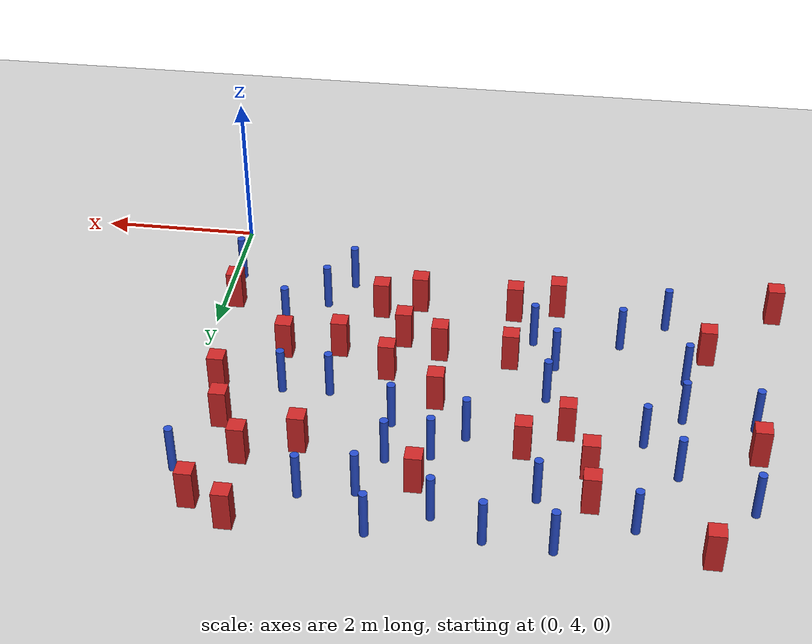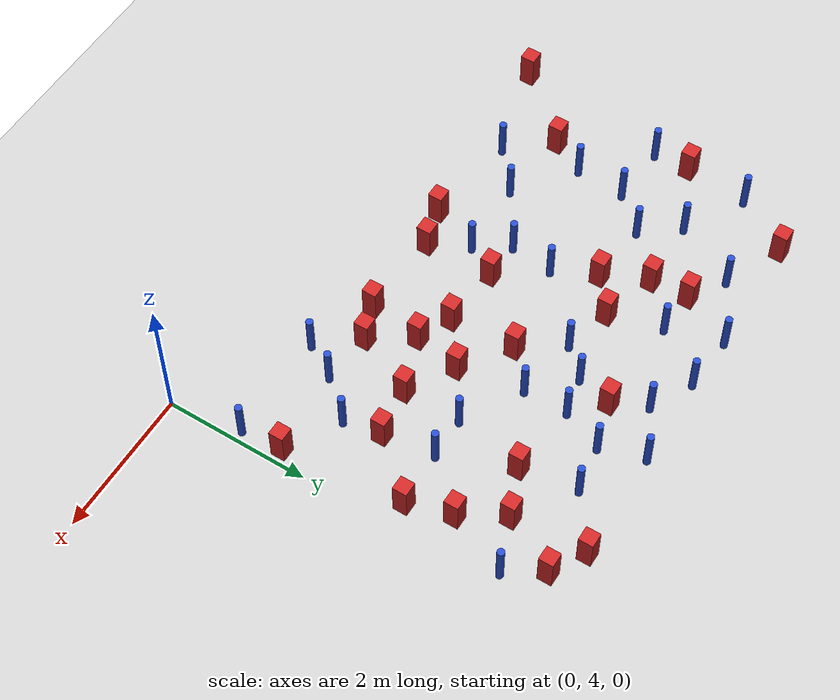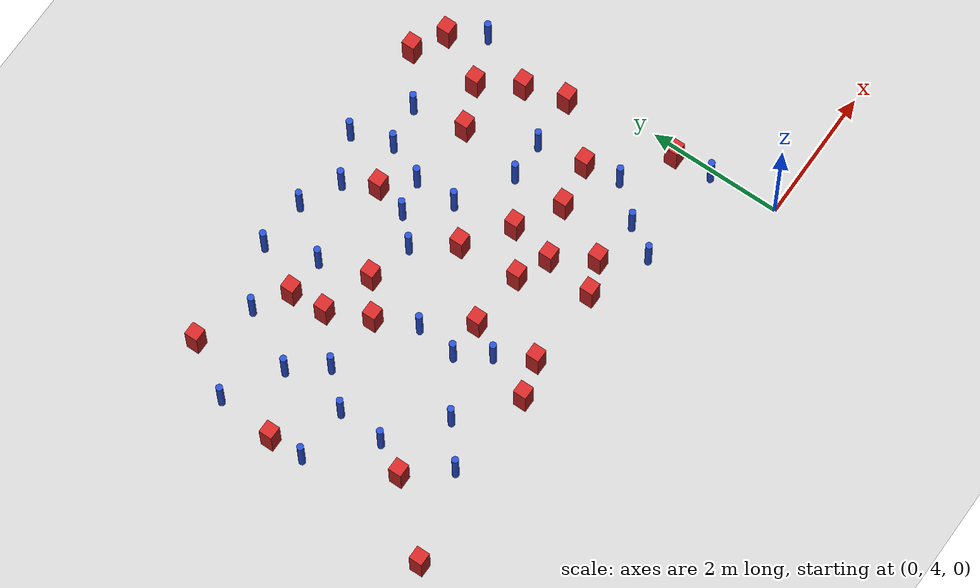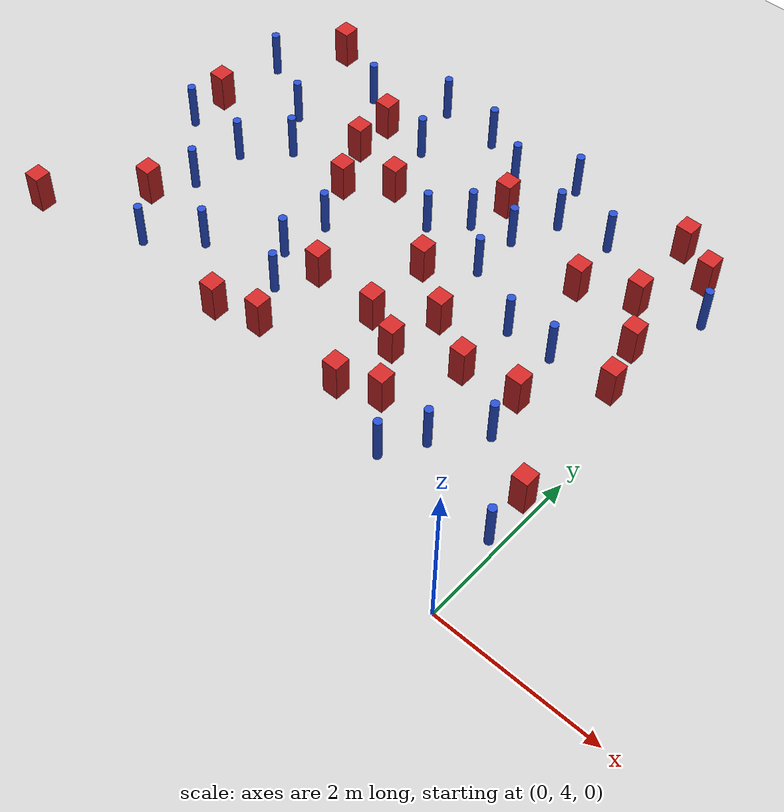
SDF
<sdf version="1.6">
 <world name="default">
  <model name="ground_plane">
   <static>1</static>
   <link name="link">
    <collision name="collision">
     <geometry><plane><normal>0 0 1</normal><size>100 100</size></plane></geometry>
     <surface><friction><ode><mu>100</mu><mu2>50</mu2></ode></friction></surface>
    </collision>
    <visual name="visual">
     <cast_shadows>0</cast_shadows>
     <geometry><plane><normal>0 0 1</normal><size>100 100</size></plane></geometry>
     <material>
      <ambient>1.0 1.0 1.0 1.0</ambient>
      <diffuse>0.8 0.8 0.8 1.0</diffuse>
      <specular>0.01 0.01 0.01 1.000000</specular>
     </material>
    </visual>
   </link>
  </model>
  <model name="pole_obstacle2">
   <static>true</static>
   <pose>-2.99270602096 8.16351334637 -9.4761961606e-06 5.49618799729e-07 2.36310414e-07 -1.55090534824e-07</pose>
   <link name="link">
    <pose>0 0 0.3 0 -0 0</pose>
    <inertial>
     <mass>1</mass>
     <inertia><ixx>0.145833</ixx><ixy>0</ixy><ixz>0</ixz><iyy>0.145833</iyy><iyz>0</iyz><izz>0.125</izz></inertia>
    </inertial>
    <collision name="collision">
     <geometry><cylinder><radius>0.05</radius><length>.6</length></cylinder></geometry>
    </collision>
    <visual name="visual">
     <geometry><cylinder><radius>0.05</radius><length>.6</length></cylinder></geometry>
     <material>
      <script><name>Gazebo/Blue</name><uri>file://media/materials/scripts/gazebo.material</uri></script>
     </material>
    </visual>
   </link>
  </model>
  <model name="square_post_obstacle11">
   <static>true</static>
   <pose>-0.168342185262 5.56822024255 -6.11067671241e-07 -5.50515727128e-06 -8.79689657224e-07 2.37013304536e-05</pose>
   <link name="link">
    <pose>0 0 0.25 0 -0 0</pose>
    <inertial>
     <mass>100</mass>
     <inertia>
      <ixx>0.166667</ixx>
      <ixy>0</ixy>
      <ixz>0</ixz>
      <iyy>0.166667</iyy>
      <iyz>0</iyz>
      <izz>0.166667</izz>
     </inertia>
    </inertial>
    <collision name="collision"><geometry><box><size>.2 .2 .5</size></box></geometry></collision>
    <visual name="visual">
     <geometry><box><size>.2 .2 .5</size></box></geometry>
     <material>
      <script><name>Gazebo/Red</name><uri>file://media/materials/scripts/gazebo.material</uri></script>
     </material>
    </visual>
   </link>
  </model>
  <model name="square_post_obstacle19">
   <static>true</static>
   <pose>-4.81161712822 8.73059657655 -6.11067671241e-07 -5.50515727128e-06 -8.79689657224e-07 2.37013304536e-05</pose>
   <link name="link">
    <pose>0 0 0.25 0 -0 0</pose>
    <inertial>
     <mass>100</mass>
     <inertia>
      <ixx>0.166667</ixx>
      <ixy>0</ixy>
      <ixz>0</ixz>
      <iyy>0.166667</iyy>
      <iyz>0</iyz>
      <izz>0.166667</izz>
     </inertia>
    </inertial>
    <collision name="collision"><geometry><box><size>.2 .2 .5</size></box></geometry></collision>
    <visual name="visual">
     <geometry><box><size>.2 .2 .5</size></box></geometry>
     <material>
      <script><name>Gazebo/Red</name><uri>file://media/materials/scripts/gazebo.material</uri></script>
     </material>
    </visual>
   </link>
  </model>
  <model name="square_post_obstacle21">
   <static>true</static>
   <pose>-4.49922647604 7.5933039331 -6.11067671241e-07 -5.50515727128e-06 -8.79689657224e-07 2.37013304536e-05</pose>
   <link name="link">
    <pose>0 0 0.25 0 -0 0</pose>
    <inertial>
     <mass>100</mass>
     <inertia>
      <ixx>0.166667</ixx>
      <ixy>0</ixy>
      <ixz>0</ixz>
      <iyy>0.166667</iyy>
      <iyz>0</iyz>
      <izz>0.166667</izz>
     </inertia>
    </inertial>
    <collision name="collision"><geometry><box><size>.2 .2 .5</size></box></geometry></collision>
    <visual name="visual">
     <geometry><box><size>.2 .2 .5</size></box></geometry>
     <material>
      <script><name>Gazebo/Red</name><uri>file://media/materials/scripts/gazebo.material</uri></script>
     </material>
    </visual>
   </link>
  </model>
  <model name="pole_obstacle18">
   <static>true</static>
   <pose>-2.48258137651 8.27382204873 -9.4761961606e-06 5.49618799729e-07 2.36310414e-07 -1.55090534824e-07</pose>
   <link name="link">
    <pose>0 0 0.3 0 -0 0</pose>
    <inertial>
     <mass>1</mass>
     <inertia><ixx>0.145833</ixx><ixy>0</ixy><ixz>0</ixz><iyy>0.145833</iyy><iyz>0</iyz><izz>0.125</izz></inertia>
    </inertial>
    <collision name="collision">
     <geometry><cylinder><radius>0.05</radius><length>.6</length></cylinder></geometry>
    </collision>
    <visual name="visual">
     <geometry><cylinder><radius>0.05</radius><length>.6</length></cylinder></geometry>
     <material>
      <script><name>Gazebo/Blue</name><uri>file://media/materials/scripts/gazebo.material</uri></script>
     </material>
    </visual>
   </link>
  </model>
  <model name="pole_obstacle25">
   <static>true</static>
   <pose>-6.59829979529 8.62045647954 -9.47619616065e-06 5.49618799737e-07 2.36310414065e-07 -1.55090534796e-07</pose>
   <link name="link">
    <pose>0 0 0.3 0 -0 0</pose>
    <inertial>
     <mass>1</mass>
     <inertia><ixx>0.145833</ixx><ixy>0</ixy><ixz>0</ixz><iyy>0.145833</iyy><iyz>0</iyz><izz>0.125</izz></inertia>
    </inertial>
    <collision name="collision">
     <geometry><cylinder><radius>0.05</radius><length>.6</length></cylinder></geometry>
    </collision>
    <visual name="visual">
     <geometry><cylinder><radius>0.05</radius><length>.6</length></cylinder></geometry>
     <material>
      <script><name>Gazebo/Blue</name><uri>file://media/materials/scripts/gazebo.material</uri></script>
     </material>
    </visual>
   </link>
  </model>
  <model name="pole_obstacle36">
   <static>true</static>
   <pose>-1.66669396515 7.19871883525 -9.47619616065e-06 5.49618799737e-07 2.36310414061e-07 -1.550905348e-07</pose>
   <link name="link">
    <pose>0 0 0.3 0 -0 0</pose>
    <inertial>
     <mass>1</mass>
     <inertia><ixx>0.145833</ixx><ixy>0</ixy><ixz>0</ixz><iyy>0.145833</iyy><iyz>0</iyz><izz>0.125</izz></inertia>
    </inertial>
    <collision name="collision">
     <geometry><cylinder><radius>0.05</radius><length>.6</length></cylinder></geometry>
    </collision>
    <visual name="visual">
     <geometry><cylinder><radius>0.05</radius><length>.6</length></cylinder></geometry>
     <material>
      <script><name>Gazebo/Blue</name><uri>file://media/materials/scripts/gazebo.material</uri></script>
     </material>
    </visual>
   </link>
  </model>
  <model name="pole_obstacle39">
   <static>true</static>
   <pose>-0.14497143323 8.70722248941 -9.47619616065e-06 5.49618799737e-07 2.36310414038e-07 -1.55090534815e-07</pose>
   <link name="link">
    <pose>0 0 0.3 0 -0 0</pose>
    <inertial>
     <mass>1</mass>
     <inertia><ixx>0.145833</ixx><ixy>0</ixy><ixz>0</ixz><iyy>0.145833</iyy><iyz>0</iyz><izz>0.125</izz></inertia>
    </inertial>
    <collision name="collision">
     <geometry><cylinder><radius>0.05</radius><length>.6</length></cylinder></geometry>
    </collision>
    <visual name="visual">
     <geometry><cylinder><radius>0.05</radius><length>.6</length></cylinder></geometry>
     <material>
      <script><name>Gazebo/Blue</name><uri>file://media/materials/scripts/gazebo.material</uri></script>
     </material>
    </visual>
   </link>
  </model>
  <model name="pole_obstacle41">
   <static>true</static>
   <pose>-2.24146399162 8.83970610219 -9.4761961606e-06 5.49618799729e-07 2.36310414e-07 -1.55090534824e-07</pose>
   <link name="link">
    <pose>0 0 0.3 0 -0 0</pose>
    <inertial>
     <mass>1</mass>
     <inertia><ixx>0.145833</ixx><ixy>0</ixy><ixz>0</ixz><iyy>0.145833</iyy><iyz>0</iyz><izz>0.125</izz></inertia>
    </inertial>
    <collision name="collision">
     <geometry><cylinder><radius>0.05</radius><length>.6</length></cylinder></geometry>
    </collision>
    <visual name="visual">
     <geometry><cylinder><radius>0.05</radius><length>.6</length></cylinder></geometry>
     <material>
      <script><name>Gazebo/Blue</name><uri>file://media/materials/scripts/gazebo.material</uri></script>
     </material>
    </visual>
   </link>
  </model>
  <model name="pole_obstacle45">
   <static>true</static>
   <pose>-1.09263364704 7.21070895545 -9.47619616065e-06 5.49618799737e-07 2.36310414061e-07 -1.550905348e-07</pose>
   <link name="link">
    <pose>0 0 0.3 0 -0 0</pose>
    <inertial>
     <mass>1</mass>
     <inertia><ixx>0.145833</ixx><ixy>0</ixy><ixz>0</ixz><iyy>0.145833</iyy><iyz>0</iyz><izz>0.125</izz></inertia>
    </inertial>
    <collision name="collision">
     <geometry><cylinder><radius>0.05</radius><length>.6</length></cylinder></geometry>
    </collision>
    <visual name="visual">
     <geometry><cylinder><radius>0.05</radius><length>.6</length></cylinder></geometry>
     <material>
      <script><name>Gazebo/Blue</name><uri>file://media/materials/scripts/gazebo.material</uri></script>
     </material>
    </visual>
   </link>
  </model>
  <model name="square_post_obstacle43">
   <static>true</static>
   <pose>-3.74219190935 5.42197526949 -6.11067671241e-07 -5.50515727128e-06 -8.79689657224e-07 2.37013304536e-05</pose>
   <link name="link">
    <pose>0 0 0.25 0 -0 0</pose>
    <inertial>
     <mass>100</mass>
     <inertia>
      <ixx>0.166667</ixx>
      <ixy>0</ixy>
      <ixz>0</ixz>
      <iyy>0.166667</iyy>
      <iyz>0</iyz>
      <izz>0.166667</izz>
     </inertia>
    </inertial>
    <collision name="collision"><geometry><box><size>.2 .2 .5</size></box></geometry></collision>
    <visual name="visual">
     <geometry><box><size>.2 .2 .5</size></box></geometry>
     <material>
      <script><name>Gazebo/Red</name><uri>file://media/materials/scripts/gazebo.material</uri></script>
     </material>
    </visual>
   </link>
  </model>
  <model name="pole_obstacle46">
   <static>true</static>
   <pose>-4.23464470515 7.00380486924 -9.47619616065e-06 5.49618799737e-07 2.36310414037e-07 -1.55090534814e-07</pose>
   <link name="link">
    <pose>0 0 0.3 0 -0 0</pose>
    <inertial>
     <mass>1</mass>
     <inertia><ixx>0.145833</ixx><ixy>0</ixy><ixz>0</ixz><iyy>0.145833</iyy><iyz>0</iyz><izz>0.125</izz></inertia>
    </inertial>
    <collision name="collision">
     <geometry><cylinder><radius>0.05</radius><length>.6</length></cylinder></geometry>
    </collision>
    <visual name="visual">
     <geometry><cylinder><radius>0.05</radius><length>.6</length></cylinder></geometry>
     <material>
      <script><name>Gazebo/Blue</name><uri>file://media/materials/scripts/gazebo.material</uri></script>
     </material>
    </visual>
   </link>
  </model>
  <model name="square_post_obstacle54">
   <static>true</static>
   <pose>-2.06057613623 5.55207586246 -6.11067671241e-07 -5.50515727128e-06 -8.79689657224e-07 2.37013304536e-05</pose>
   <link name="link">
    <pose>0 0 0.25 0 -0 0</pose>
    <inertial>
     <mass>100</mass>
     <inertia>
      <ixx>0.166667</ixx>
      <ixy>0</ixy>
      <ixz>0</ixz>
      <iyy>0.166667</iyy>
      <iyz>0</iyz>
      <izz>0.166667</izz>
     </inertia>
    </inertial>
    <collision name="collision"><geometry><box><size>.2 .2 .5</size></box></geometry></collision>
    <visual name="visual">
     <geometry><box><size>.2 .2 .5</size></box></geometry>
     <material>
      <script><name>Gazebo/Red</name><uri>file://media/materials/scripts/gazebo.material</uri></script>
     </material>
    </visual>
   </link>
  </model>
  <model name="square_post_obstacle55">
   <static>true</static>
   <pose>-2.53311628217 5.36547473872 -6.11067671241e-07 -5.50515727128e-06 -8.79689657224e-07 2.37013304536e-05</pose>
   <link name="link">
    <pose>0 0 0.25 0 -0 0</pose>
    <inertial>
     <mass>100</mass>
     <inertia>
      <ixx>0.166667</ixx>
      <ixy>0</ixy>
      <ixz>0</ixz>
      <iyy>0.166667</iyy>
      <iyz>0</iyz>
      <izz>0.166667</izz>
     </inertia>
    </inertial>
    <collision name="collision"><geometry><box><size>.2 .2 .5</size></box></geometry></collision>
    <visual name="visual">
     <geometry><box><size>.2 .2 .5</size></box></geometry>
     <material>
      <script><name>Gazebo/Red</name><uri>file://media/materials/scripts/gazebo.material</uri></script>
     </material>
    </visual>
   </link>
  </model>
  <model name="pole_obstacle53">
   <static>true</static>
   <pose>-1.60779803636 8.94808743692 -9.47619616065e-06 5.49618799737e-07 2.36310414046e-07 -1.55090534809e-07</pose>
   <link name="link">
    <pose>0 0 0.3 0 -0 0</pose>
    <inertial>
     <mass>1</mass>
     <inertia><ixx>0.145833</ixx><ixy>0</ixy><ixz>0</ixz><iyy>0.145833</iyy><iyz>0</iyz><izz>0.125</izz></inertia>
    </inertial>
    <collision name="collision">
     <geometry><cylinder><radius>0.05</radius><length>.6</length></cylinder></geometry>
    </collision>
    <visual name="visual">
     <geometry><cylinder><radius>0.05</radius><length>.6</length></cylinder></geometry>
     <material>
      <script><name>Gazebo/Blue</name><uri>file://media/materials/scripts/gazebo.material</uri></script>
     </material>
    </visual>
   </link>
  </model>
  <model name="pole_obstacle61">
   <static>true</static>
   <pose>-6.66820597871 7.23279374435 -9.47619616065e-06 5.49618799737e-07 2.36310414037e-07 -1.55090534814e-07</pose>
   <link name="link">
    <pose>0 0 0.3 0 -0 0</pose>
    <inertial>
     <mass>1</mass>
     <inertia><ixx>0.145833</ixx><ixy>0</ixy><ixz>0</ixz><iyy>0.145833</iyy><iyz>0</iyz><izz>0.125</izz></inertia>
    </inertial>
    <collision name="collision">
     <geometry><cylinder><radius>0.05</radius><length>.6</length></cylinder></geometry>
    </collision>
    <visual name="visual">
     <geometry><cylinder><radius>0.05</radius><length>.6</length></cylinder></geometry>
     <material>
      <script><name>Gazebo/Blue</name><uri>file://media/materials/scripts/gazebo.material</uri></script>
     </material>
    </visual>
   </link>
  </model>
  <model name="square_post_obstacle73">
   <static>true</static>
   <pose>-0.498958763206 7.86330886273 -6.11067671241e-07 -5.50515727128e-06 -8.79689657224e-07 2.37013304536e-05</pose>
   <link name="link">
    <pose>0 0 0.25 0 -0 0</pose>
    <inertial>
     <mass>100</mass>
     <inertia>
      <ixx>0.166667</ixx>
      <ixy>0</ixy>
      <ixz>0</ixz>
      <iyy>0.166667</iyy>
      <iyz>0</iyz>
      <izz>0.166667</izz>
     </inertia>
    </inertial>
    <collision name="collision"><geometry><box><size>.2 .2 .5</size></box></geometry></collision>
    <visual name="visual">
     <geometry><box><size>.2 .2 .5</size></box></geometry>
     <material>
      <script><name>Gazebo/Red</name><uri>file://media/materials/scripts/gazebo.material</uri></script>
     </material>
    </visual>
   </link>
  </model>
  <model name="pole_obstacle77">
   <static>true</static>
   <pose>-2.42915545298 9.43721133259 -9.4761961606e-06 5.49618799729e-07 2.36310414e-07 -1.55090534824e-07</pose>
   <link name="link">
    <pose>0 0 0.3 0 -0 0</pose>
    <inertial>
     <mass>1</mass>
     <inertia><ixx>0.145833</ixx><ixy>0</ixy><ixz>0</ixz><iyy>0.145833</iyy><iyz>0</iyz><izz>0.125</izz></inertia>
    </inertial>
    <collision name="collision">
     <geometry><cylinder><radius>0.05</radius><length>.6</length></cylinder></geometry>
    </collision>
    <visual name="visual">
     <geometry><cylinder><radius>0.05</radius><length>.6</length></cylinder></geometry>
     <material>
      <script><name>Gazebo/Blue</name><uri>file://media/materials/scripts/gazebo.material</uri></script>
     </material>
    </visual>
   </link>
  </model>
  <model name="pole_obstacle78">
   <static>true</static>
   <pose>-4.22532831732 8.69902688148 -9.47619616065e-06 5.49618799737e-07 2.36310414065e-07 -1.55090534796e-07</pose>
   <link name="link">
    <pose>0 0 0.3 0 -0 0</pose>
    <inertial>
     <mass>1</mass>
     <inertia><ixx>0.145833</ixx><ixy>0</ixy><ixz>0</ixz><iyy>0.145833</iyy><iyz>0</iyz><izz>0.125</izz></inertia>
    </inertial>
    <collision name="collision">
     <geometry><cylinder><radius>0.05</radius><length>.6</length></cylinder></geometry>
    </collision>
    <visual name="visual">
     <geometry><cylinder><radius>0.05</radius><length>.6</length></cylinder></geometry>
     <material>
      <script><name>Gazebo/Blue</name><uri>file://media/materials/scripts/gazebo.material</uri></script>
     </material>
    </visual>
   </link>
  </model>
  <model name="square_post_obstacle80">
   <static>true</static>
   <pose>-6.13101167859 6.00858298358 -6.11067671241e-07 -5.50515727128e-06 -8.79689657224e-07 2.37013304536e-05</pose>
   <link name="link">
    <pose>0 0 0.25 0 -0 0</pose>
    <inertial>
     <mass>100</mass>
     <inertia>
      <ixx>0.166667</ixx>
      <ixy>0</ixy>
      <ixz>0</ixz>
      <iyy>0.166667</iyy>
      <iyz>0</iyz>
      <izz>0.166667</izz>
     </inertia>
    </inertial>
    <collision name="collision"><geometry><box><size>.2 .2 .5</size></box></geometry></collision>
    <visual name="visual">
     <geometry><box><size>.2 .2 .5</size></box></geometry>
     <material>
      <script><name>Gazebo/Red</name><uri>file://media/materials/scripts/gazebo.material</uri></script>
     </material>
    </visual>
   </link>
  </model>
  <model name="pole_obstacle87">
   <static>true</static>
   <pose>-5.64543630328 5.42486277891 -9.47619616065e-06 5.49618799737e-07 2.36310414037e-07 -1.55090534814e-07</pose>
   <link name="link">
    <pose>0 0 0.3 0 -0 0</pose>
    <inertial>
     <mass>1</mass>
     <inertia><ixx>0.145833</ixx><ixy>0</ixy><ixz>0</ixz><iyy>0.145833</iyy><iyz>0</iyz><izz>0.125</izz></inertia>
    </inertial>
    <collision name="collision">
     <geometry><cylinder><radius>0.05</radius><length>.6</length></cylinder></geometry>
    </collision>
    <visual name="visual">
     <geometry><cylinder><radius>0.05</radius><length>.6</length></cylinder></geometry>
     <material>
      <script><name>Gazebo/Blue</name><uri>file://media/materials/scripts/gazebo.material</uri></script>
     </material>
    </visual>
   </link>
  </model>
  <model name="pole_obstacle90">
   <static>true</static>
   <pose>-5.77312851516 8.15646606127 -9.47619616065e-06 5.49618799737e-07 2.36310414065e-07 -1.55090534796e-07</pose>
   <link name="link">
    <pose>0 0 0.3 0 -0 0</pose>
    <inertial>
     <mass>1</mass>
     <inertia><ixx>0.145833</ixx><ixy>0</ixy><ixz>0</ixz><iyy>0.145833</iyy><iyz>0</iyz><izz>0.125</izz></inertia>
    </inertial>
    <collision name="collision">
     <geometry><cylinder><radius>0.05</radius><length>.6</length></cylinder></geometry>
    </collision>
    <visual name="visual">
     <geometry><cylinder><radius>0.05</radius><length>.6</length></cylinder></geometry>
     <material>
      <script><name>Gazebo/Blue</name><uri>file://media/materials/scripts/gazebo.material</uri></script>
     </material>
    </visual>
   </link>
  </model>
  <model name="pole_obstacle91">
   <static>true</static>
   <pose>-4.30699243745 6.39858454291 -9.47619616065e-06 5.49618799737e-07 2.36310414037e-07 -1.55090534814e-07</pose>
   <link name="link">
    <pose>0 0 0.3 0 -0 0</pose>
    <inertial>
     <mass>1</mass>
     <inertia><ixx>0.145833</ixx><ixy>0</ixy><ixz>0</ixz><iyy>0.145833</iyy><iyz>0</iyz><izz>0.125</izz></inertia>
    </inertial>
    <collision name="collision">
     <geometry><cylinder><radius>0.05</radius><length>.6</length></cylinder></geometry>
    </collision>
    <visual name="visual">
     <geometry><cylinder><radius>0.05</radius><length>.6</length></cylinder></geometry>
     <material>
      <script><name>Gazebo/Blue</name><uri>file://media/materials/scripts/gazebo.material</uri></script>
     </material>
    </visual>
   </link>
  </model>
  <model name="pole_obstacle92">
   <static>true</static>
   <pose>-5.08440858093 5.88658005969 -9.47619616065e-06 5.49618799737e-07 2.36310414037e-07 -1.55090534814e-07</pose>
   <link name="link">
    <pose>0 0 0.3 0 -0 0</pose>
    <inertial>
     <mass>1</mass>
     <inertia><ixx>0.145833</ixx><ixy>0</ixy><ixz>0</ixz><iyy>0.145833</iyy><iyz>0</iyz><izz>0.125</izz></inertia>
    </inertial>
    <collision name="collision">
     <geometry><cylinder><radius>0.05</radius><length>.6</length></cylinder></geometry>
    </collision>
    <visual name="visual">
     <geometry><cylinder><radius>0.05</radius><length>.6</length></cylinder></geometry>
     <material>
      <script><name>Gazebo/Blue</name><uri>file://media/materials/scripts/gazebo.material</uri></script>
     </material>
    </visual>
   </link>
  </model>
  <model name="square_post_obstacle92">
   <static>true</static>
   <pose>-0.840992350762 8.44017807429 -6.11067671241e-07 -5.50515727128e-06 -8.79689657224e-07 2.37013304536e-05</pose>
   <link name="link">
    <pose>0 0 0.25 0 -0 0</pose>
    <inertial>
     <mass>100</mass>
     <inertia>
      <ixx>0.166667</ixx>
      <ixy>0</ixy>
      <ixz>0</ixz>
      <iyy>0.166667</iyy>
      <iyz>0</iyz>
      <izz>0.166667</izz>
     </inertia>
    </inertial>
    <collision name="collision"><geometry><box><size>.2 .2 .5</size></box></geometry></collision>
    <visual name="visual">
     <geometry><box><size>.2 .2 .5</size></box></geometry>
     <material>
      <script><name>Gazebo/Red</name><uri>file://media/materials/scripts/gazebo.material</uri></script>
     </material>
    </visual>
   </link>
  </model>
  <model name="pole_obstacle105">
   <static>true</static>
   <pose>-0.12525635423 4.99179556506 -9.47619616065e-06 5.49618799737e-07 2.36310414062e-07 -1.550905348e-07</pose>
   <link name="link">
    <pose>0 0 0.3 0 -0 0</pose>
    <inertial>
     <mass>1</mass>
     <inertia><ixx>0.145833</ixx><ixy>0</ixy><ixz>0</ixz><iyy>0.145833</iyy><iyz>0</iyz><izz>0.125</izz></inertia>
    </inertial>
    <collision name="collision">
     <geometry><cylinder><radius>0.05</radius><length>.6</length></cylinder></geometry>
    </collision>
    <visual name="visual">
     <geometry><cylinder><radius>0.05</radius><length>.6</length></cylinder></geometry>
     <material>
      <script><name>Gazebo/Blue</name><uri>file://media/materials/scripts/gazebo.material</uri></script>
     </material>
    </visual>
   </link>
  </model>
  <model name="square_post_obstacle98">
   <static>true</static>
   <pose>-4.27892141968 5.26059124908 -6.11067671241e-07 -5.50515727128e-06 -8.79689657224e-07 2.37013304536e-05</pose>
   <link name="link">
    <pose>0 0 0.25 0 -0 0</pose>
    <inertial>
     <mass>100</mass>
     <inertia>
      <ixx>0.166667</ixx>
      <ixy>0</ixy>
      <ixz>0</ixz>
      <iyy>0.166667</iyy>
      <iyz>0</iyz>
      <izz>0.166667</izz>
     </inertia>
    </inertial>
    <collision name="collision"><geometry><box><size>.2 .2 .5</size></box></geometry></collision>
    <visual name="visual">
     <geometry><box><size>.2 .2 .5</size></box></geometry>
     <material>
      <script><name>Gazebo/Red</name><uri>file://media/materials/scripts/gazebo.material</uri></script>
     </material>
    </visual>
   </link>
  </model>
  <model name="square_post_obstacle102">
   <static>true</static>
   <pose>-6.99234487947 5.06630958952 -6.11067671241e-07 -5.50515727128e-06 -8.79689657224e-07 2.37013304536e-05</pose>
   <link name="link">
    <pose>0 0 0.25 0 -0 0</pose>
    <inertial>
     <mass>100</mass>
     <inertia>
      <ixx>0.166667</ixx>
      <ixy>0</ixy>
      <ixz>0</ixz>
      <iyy>0.166667</iyy>
      <iyz>0</iyz>
      <izz>0.166667</izz>
     </inertia>
    </inertial>
    <collision name="collision"><geometry><box><size>.2 .2 .5</size></box></geometry></collision>
    <visual name="visual">
     <geometry><box><size>.2 .2 .5</size></box></geometry>
     <material>
      <script><name>Gazebo/Red</name><uri>file://media/materials/scripts/gazebo.material</uri></script>
     </material>
    </visual>
   </link>
  </model>
  <model name="square_post_obstacle107">
   <static>true</static>
   <pose>-4.01656646397 7.96715911175 -6.11067671241e-07 -5.50515727128e-06 -8.79689657224e-07 2.37013304536e-05</pose>
   <link name="link">
    <pose>0 0 0.25 0 -0 0</pose>
    <inertial>
     <mass>100</mass>
     <inertia>
      <ixx>0.166667</ixx>
      <ixy>0</ixy>
      <ixz>0</ixz>
      <iyy>0.166667</iyy>
      <iyz>0</iyz>
      <izz>0.166667</izz>
     </inertia>
    </inertial>
    <collision name="collision"><geometry><box><size>.2 .2 .5</size></box></geometry></collision>
    <visual name="visual">
     <geometry><box><size>.2 .2 .5</size></box></geometry>
     <material>
      <script><name>Gazebo/Red</name><uri>file://media/materials/scripts/gazebo.material</uri></script>
     </material>
    </visual>
   </link>
  </model>
  <model name="square_post_obstacle111">
   <static>true</static>
   <pose>-4.78341461138 8.19954308501 -6.11067671241e-07 -5.50515727128e-06 -8.79689657224e-07 2.37013304536e-05</pose>
   <link name="link">
    <pose>0 0 0.25 0 -0 0</pose>
    <inertial>
     <mass>100</mass>
     <inertia>
      <ixx>0.166667</ixx>
      <ixy>0</ixy>
      <ixz>0</ixz>
      <iyy>0.166667</iyy>
      <iyz>0</iyz>
      <izz>0.166667</izz>
     </inertia>
    </inertial>
    <collision name="collision"><geometry><box><size>.2 .2 .5</size></box></geometry></collision>
    <visual name="visual">
     <geometry><box><size>.2 .2 .5</size></box></geometry>
     <material>
      <script><name>Gazebo/Red</name><uri>file://media/materials/scripts/gazebo.material</uri></script>
     </material>
    </visual>
   </link>
  </model>
  <model name="square_post_obstacle113">
   <static>true</static>
   <pose>-6.67709172913 7.74280831941 -6.11067671241e-07 -5.50515727128e-06 -8.79689657224e-07 2.37013304536e-05</pose>
   <link name="link">
    <pose>0 0 0.25 0 -0 0</pose>
    <inertial>
     <mass>100</mass>
     <inertia>
      <ixx>0.166667</ixx>
      <ixy>0</ixy>
      <ixz>0</ixz>
      <iyy>0.166667</iyy>
      <iyz>0</iyz>
      <izz>0.166667</izz>
     </inertia>
    </inertial>
    <collision name="collision"><geometry><box><size>.2 .2 .5</size></box></geometry></collision>
    <visual name="visual">
     <geometry><box><size>.2 .2 .5</size></box></geometry>
     <material>
      <script><name>Gazebo/Red</name><uri>file://media/materials/scripts/gazebo.material</uri></script>
     </material>
    </visual>
   </link>
  </model>
  <model name="square_post_obstacle115">
   <static>true</static>
   <pose>-1.66228161183 6.39782128132 -6.11067671241e-07 -5.50515727128e-06 -8.79689657224e-07 2.37013304536e-05</pose>
   <link name="link">
    <pose>0 0 0.25 0 -0 0</pose>
    <inertial>
     <mass>100</mass>
     <inertia>
      <ixx>0.166667</ixx>
      <ixy>0</ixy>
      <ixz>0</ixz>
      <iyy>0.166667</iyy>
      <iyz>0</iyz>
      <izz>0.166667</izz>
     </inertia>
    </inertial>
    <collision name="collision"><geometry><box><size>.2 .2 .5</size></box></geometry></collision>
    <visual name="visual">
     <geometry><box><size>.2 .2 .5</size></box></geometry>
     <material>
      <script><name>Gazebo/Red</name><uri>file://media/materials/scripts/gazebo.material</uri></script>
     </material>
    </visual>
   </link>
  </model>
  <model name="square_post_obstacle117">
   <static>true</static>
   <pose>-6.10715785202 9.393371187 -6.11067671241e-07 -5.50515727128e-06 -8.79689657224e-07 2.37013304536e-05</pose>
   <link name="link">
    <pose>0 0 0.25 0 -0 0</pose>
    <inertial>
     <mass>100</mass>
     <inertia>
      <ixx>0.166667</ixx>
      <ixy>0</ixy>
      <ixz>0</ixz>
      <iyy>0.166667</iyy>
      <iyz>0</iyz>
      <izz>0.166667</izz>
     </inertia>
    </inertial>
    <collision name="collision"><geometry><box><size>.2 .2 .5</size></box></geometry></collision>
    <visual name="visual">
     <geometry><box><size>.2 .2 .5</size></box></geometry>
     <material>
      <script><name>Gazebo/Red</name><uri>file://media/materials/scripts/gazebo.material</uri></script>
     </material>
    </visual>
   </link>
  </model>
  <model name="square_post_obstacle118">
   <static>true</static>
   <pose>-2.29782736026 6.77293217452 -6.11067671241e-07 -5.50515727128e-06 -8.79689657224e-07 2.37013304536e-05</pose>
   <link name="link">
    <pose>0 0 0.25 0 -0 0</pose>
    <inertial>
     <mass>100</mass>
     <inertia>
      <ixx>0.166667</ixx>
      <ixy>0</ixy>
      <ixz>0</ixz>
      <iyy>0.166667</iyy>
      <iyz>0</iyz>
      <izz>0.166667</izz>
     </inertia>
    </inertial>
    <collision name="collision"><geometry><box><size>.2 .2 .5</size></box></geometry></collision>
    <visual name="visual">
     <geometry><box><size>.2 .2 .5</size></box></geometry>
     <material>
      <script><name>Gazebo/Red</name><uri>file://media/materials/scripts/gazebo.material</uri></script>
     </material>
    </visual>
   </link>
  </model>
  <model name="square_post_obstacle125">
   <static>true</static>
   <pose>-2.89039213765 6.32676688581 -6.11067671241e-07 -5.50515727128e-06 -8.79689657224e-07 2.37013304536e-05</pose>
   <link name="link">
    <pose>0 0 0.25 0 -0 0</pose>
    <inertial>
     <mass>100</mass>
     <inertia>
      <ixx>0.166667</ixx>
      <ixy>0</ixy>
      <ixz>0</ixz>
      <iyy>0.166667</iyy>
      <iyz>0</iyz>
      <izz>0.166667</izz>
     </inertia>
    </inertial>
    <collision name="collision"><geometry><box><size>.2 .2 .5</size></box></geometry></collision>
    <visual name="visual">
     <geometry><box><size>.2 .2 .5</size></box></geometry>
     <material>
      <script><name>Gazebo/Red</name><uri>file://media/materials/scripts/gazebo.material</uri></script>
     </material>
    </visual>
   </link>
  </model>
  <model name="pole_obstacle144">
   <static>true</static>
   <pose>-2.47476789034 7.65853597113 -9.47619616065e-06 5.49618799738e-07 2.3631041406e-07 -1.55090534801e-07</pose>
   <link name="link">
    <pose>0 0 0.3 0 -0 0</pose>
    <inertial>
     <mass>1</mass>
     <inertia><ixx>0.145833</ixx><ixy>0</ixy><ixz>0</ixz><iyy>0.145833</iyy><iyz>0</iyz><izz>0.125</izz></inertia>
    </inertial>
    <collision name="collision">
     <geometry><cylinder><radius>0.05</radius><length>.6</length></cylinder></geometry>
    </collision>
    <visual name="visual">
     <geometry><cylinder><radius>0.05</radius><length>.6</length></cylinder></geometry>
     <material>
      <script><name>Gazebo/Blue</name><uri>file://media/materials/scripts/gazebo.material</uri></script>
     </material>
    </visual>
   </link>
  </model>
  <model name="square_post_obstacle134">
   <static>true</static>
   <pose>-2.42102468572 6.11786242803 -6.11067671241e-07 -5.50515727128e-06 -8.79689657224e-07 2.37013304536e-05</pose>
   <link name="link">
    <pose>0 0 0.25 0 -0 0</pose>
    <inertial>
     <mass>100</mass>
     <inertia>
      <ixx>0.166667</ixx>
      <ixy>0</ixy>
      <ixz>0</ixz>
      <iyy>0.166667</iyy>
      <iyz>0</iyz>
      <izz>0.166667</izz>
     </inertia>
    </inertial>
    <collision name="collision"><geometry><box><size>.2 .2 .5</size></box></geometry></collision>
    <visual name="visual">
     <geometry><box><size>.2 .2 .5</size></box></geometry>
     <material>
      <script><name>Gazebo/Red</name><uri>file://media/materials/scripts/gazebo.material</uri></script>
     </material>
    </visual>
   </link>
  </model>
  <model name="square_post_obstacle136">
   <static>true</static>
   <pose>-0.327692633127 7.2480206291 -6.11067671241e-07 -5.50515727128e-06 -8.79689657224e-07 2.37013304536e-05</pose>
   <link name="link">
    <pose>0 0 0.25 0 -0 0</pose>
    <inertial>
     <mass>100</mass>
     <inertia>
      <ixx>0.166667</ixx>
      <ixy>0</ixy>
      <ixz>0</ixz>
      <iyy>0.166667</iyy>
      <iyz>0</iyz>
      <izz>0.166667</izz>
     </inertia>
    </inertial>
    <collision name="collision"><geometry><box><size>.2 .2 .5</size></box></geometry></collision>
    <visual name="visual">
     <geometry><box><size>.2 .2 .5</size></box></geometry>
     <material>
      <script><name>Gazebo/Red</name><uri>file://media/materials/scripts/gazebo.material</uri></script>
     </material>
    </visual>
   </link>
  </model>
  <model name="pole_obstacle152">
   <static>true</static>
   <pose>-5.3064101616 9.03194871055 -9.47619616065e-06 5.49618799737e-07 2.36310414065e-07 -1.55090534796e-07</pose>
   <link name="link">
    <pose>0 0 0.3 0 -0 0</pose>
    <inertial>
     <mass>1</mass>
     <inertia><ixx>0.145833</ixx><ixy>0</ixy><ixz>0</ixz><iyy>0.145833</iyy><iyz>0</iyz><izz>0.125</izz></inertia>
    </inertial>
    <collision name="collision">
     <geometry><cylinder><radius>0.05</radius><length>.6</length></cylinder></geometry>
    </collision>
    <visual name="visual">
     <geometry><cylinder><radius>0.05</radius><length>.6</length></cylinder></geometry>
     <material>
      <script><name>Gazebo/Blue</name><uri>file://media/materials/scripts/gazebo.material</uri></script>
     </material>
    </visual>
   </link>
  </model>
  <model name="pole_obstacle155">
   <static>true</static>
   <pose>-1.62645446022 5.01463564295 -9.47619616065e-06 5.49618799737e-07 2.36310414061e-07 -1.550905348e-07</pose>
   <link name="link">
    <pose>0 0 0.3 0 -0 0</pose>
    <inertial>
     <mass>1</mass>
     <inertia><ixx>0.145833</ixx><ixy>0</ixy><ixz>0</ixz><iyy>0.145833</iyy><iyz>0</iyz><izz>0.125</izz></inertia>
    </inertial>
    <collision name="collision">
     <geometry><cylinder><radius>0.05</radius><length>.6</length></cylinder></geometry>
    </collision>
    <visual name="visual">
     <geometry><cylinder><radius>0.05</radius><length>.6</length></cylinder></geometry>
     <material>
      <script><name>Gazebo/Blue</name><uri>file://media/materials/scripts/gazebo.material</uri></script>
     </material>
    </visual>
   </link>
  </model>
  <model name="pole_obstacle168">
   <static>true</static>
   <pose>-4.01616049066 5.93927840136 -9.47619616065e-06 5.49618799737e-07 2.36310414031e-07 -1.55090534817e-07</pose>
   <link name="link">
    <pose>0 0 0.3 0 -0 0</pose>
    <inertial>
     <mass>1</mass>
     <inertia><ixx>0.145833</ixx><ixy>0</ixy><ixz>0</ixz><iyy>0.145833</iyy><iyz>0</iyz><izz>0.125</izz></inertia>
    </inertial>
    <collision name="collision">
     <geometry><cylinder><radius>0.05</radius><length>.6</length></cylinder></geometry>
    </collision>
    <visual name="visual">
     <geometry><cylinder><radius>0.05</radius><length>.6</length></cylinder></geometry>
     <material>
      <script><name>Gazebo/Blue</name><uri>file://media/materials/scripts/gazebo.material</uri></script>
     </material>
    </visual>
   </link>
  </model>
  <model name="pole_obstacle170">
   <static>true</static>
   <pose>-3.10289810377 9.10888914308 -9.4761961606e-06 5.49618799729e-07 2.36310414e-07 -1.55090534824e-07</pose>
   <link name="link">
    <pose>0 0 0.3 0 -0 0</pose>
    <inertial>
     <mass>1</mass>
     <inertia><ixx>0.145833</ixx><ixy>0</ixy><ixz>0</ixz><iyy>0.145833</iyy><iyz>0</iyz><izz>0.125</izz></inertia>
    </inertial>
    <collision name="collision">
     <geometry><cylinder><radius>0.05</radius><length>.6</length></cylinder></geometry>
    </collision>
    <visual name="visual">
     <geometry><cylinder><radius>0.05</radius><length>.6</length></cylinder></geometry>
     <material>
      <script><name>Gazebo/Blue</name><uri>file://media/materials/scripts/gazebo.material</uri></script>
     </material>
    </visual>
   </link>
  </model>
  <model name="pole_obstacle174">
   <static>true</static>
   <pose>-3.68844204681 9.39634615477 -9.4761961606e-06 5.49618799729e-07 2.36310414e-07 -1.55090534824e-07</pose>
   <link name="link">
    <pose>0 0 0.3 0 -0 0</pose>
    <inertial>
     <mass>1</mass>
     <inertia><ixx>0.145833</ixx><ixy>0</ixy><ixz>0</ixz><iyy>0.145833</iyy><iyz>0</iyz><izz>0.125</izz></inertia>
    </inertial>
    <collision name="collision">
     <geometry><cylinder><radius>0.05</radius><length>.6</length></cylinder></geometry>
    </collision>
    <visual name="visual">
     <geometry><cylinder><radius>0.05</radius><length>.6</length></cylinder></geometry>
     <material>
      <script><name>Gazebo/Blue</name><uri>file://media/materials/scripts/gazebo.material</uri></script>
     </material>
    </visual>
   </link>
  </model>
  <model name="pole_obstacle177">
   <static>true</static>
   <pose>-3.35755342998 7.79714791008 -9.47619616065e-06 5.49618799738e-07 2.3631041406e-07 -1.55090534801e-07</pose>
   <link name="link">
    <pose>0 0 0.3 0 -0 0</pose>
    <inertial>
     <mass>1</mass>
     <inertia><ixx>0.145833</ixx><ixy>0</ixy><ixz>0</ixz><iyy>0.145833</iyy><iyz>0</iyz><izz>0.125</izz></inertia>
    </inertial>
    <collision name="collision">
     <geometry><cylinder><radius>0.05</radius><length>.6</length></cylinder></geometry>
    </collision>
    <visual name="visual">
     <geometry><cylinder><radius>0.05</radius><length>.6</length></cylinder></geometry>
     <material>
      <script><name>Gazebo/Blue</name><uri>file://media/materials/scripts/gazebo.material</uri></script>
     </material>
    </visual>
   </link>
  </model>
  <model name="square_post_obstacle167">
   <static>true</static>
   <pose>-1.47424149027 8.1732983493 -6.11067671241e-07 -5.50515727128e-06 -8.79689657224e-07 2.37013304536e-05</pose>
   <link name="link">
    <pose>0 0 0.25 0 -0 0</pose>
    <inertial>
     <mass>100</mass>
     <inertia>
      <ixx>0.166667</ixx>
      <ixy>0</ixy>
      <ixz>0</ixz>
      <iyy>0.166667</iyy>
      <iyz>0</iyz>
      <izz>0.166667</izz>
     </inertia>
    </inertial>
    <collision name="collision"><geometry><box><size>.2 .2 .5</size></box></geometry></collision>
    <visual name="visual">
     <geometry><box><size>.2 .2 .5</size></box></geometry>
     <material>
      <script><name>Gazebo/Red</name><uri>file://media/materials/scripts/gazebo.material</uri></script>
     </material>
    </visual>
   </link>
  </model>
  <model name="pole_obstacle184">
   <static>true</static>
   <pose>-4.44924337044 9.4481986757 -9.47619616065e-06 5.49618799737e-07 2.36310414065e-07 -1.55090534796e-07</pose>
   <link name="link">
    <pose>0 0 0.3 0 -0 0</pose>
    <inertial>
     <mass>1</mass>
     <inertia><ixx>0.145833</ixx><ixy>0</ixy><ixz>0</ixz><iyy>0.145833</iyy><iyz>0</iyz><izz>0.125</izz></inertia>
    </inertial>
    <collision name="collision">
     <geometry><cylinder><radius>0.05</radius><length>.6</length></cylinder></geometry>
    </collision>
    <visual name="visual">
     <geometry><cylinder><radius>0.05</radius><length>.6</length></cylinder></geometry>
     <material>
      <script><name>Gazebo/Blue</name><uri>file://media/materials/scripts/gazebo.material</uri></script>
     </material>
    </visual>
   </link>
  </model>
  <model name="square_post_obstacle181">
   <static>true</static>
   <pose>-0.445832402355 9.19623677012 -6.11067671241e-07 -5.50515727128e-06 -8.79689657224e-07 2.37013304536e-05</pose>
   <link name="link">
    <pose>0 0 0.25 0 -0 0</pose>
    <inertial>
     <mass>100</mass>
     <inertia>
      <ixx>0.166667</ixx>
      <ixy>0</ixy>
      <ixz>0</ixz>
      <iyy>0.166667</iyy>
      <iyz>0</iyz>
      <izz>0.166667</izz>
     </inertia>
    </inertial>
    <collision name="collision"><geometry><box><size>.2 .2 .5</size></box></geometry></collision>
    <visual name="visual">
     <geometry><box><size>.2 .2 .5</size></box></geometry>
     <material>
      <script><name>Gazebo/Red</name><uri>file://media/materials/scripts/gazebo.material</uri></script>
     </material>
    </visual>
   </link>
  </model>
  <model name="square_post_obstacle185">
   <static>true</static>
   <pose>-3.75815080191 6.38556254877 -6.11067671241e-07 -5.50515727128e-06 -8.79689657224e-07 2.37013304536e-05</pose>
   <link name="link">
    <pose>0 0 0.25 0 -0 0</pose>
    <inertial>
     <mass>100</mass>
     <inertia>
      <ixx>0.166667</ixx>
      <ixy>0</ixy>
      <ixz>0</ixz>
      <iyy>0.166667</iyy>
      <iyz>0</iyz>
      <izz>0.166667</izz>
     </inertia>
    </inertial>
    <collision name="collision"><geometry><box><size>.2 .2 .5</size></box></geometry></collision>
    <visual name="visual">
     <geometry><box><size>.2 .2 .5</size></box></geometry>
     <material>
      <script><name>Gazebo/Red</name><uri>file://media/materials/scripts/gazebo.material</uri></script>
     </material>
    </visual>
   </link>
  </model>
  <model name="square_post_obstacle191">
   <static>true</static>
   <pose>-0.914267435171 9.4602988941 -6.11067671241e-07 -5.50515727128e-06 -8.79689657224e-07 2.37013304536e-05</pose>
   <link name="link">
    <pose>0 0 0.25 0 -0 0</pose>
    <inertial>
     <mass>100</mass>
     <inertia>
      <ixx>0.166667</ixx>
      <ixy>0</ixy>
      <ixz>0</ixz>
      <iyy>0.166667</iyy>
      <iyz>0</iyz>
      <izz>0.166667</izz>
     </inertia>
    </inertial>
    <collision name="collision"><geometry><box><size>.2 .2 .5</size></box></geometry></collision>
    <visual name="visual">
     <geometry><box><size>.2 .2 .5</size></box></geometry>
     <material>
      <script><name>Gazebo/Red</name><uri>file://media/materials/scripts/gazebo.material</uri></script>
     </material>
    </visual>
   </link>
  </model>
  <model name="pole_obstacle189">
   <static>true</static>
   <pose>-0.898209194048 5.9787597131 -9.47619616065e-06 5.49618799737e-07 2.36310414065e-07 -1.55090534796e-07</pose>
   <link name="link">
    <pose>0 0 0.3 0 -0 0</pose>
    <inertial>
     <mass>1</mass>
     <inertia><ixx>0.145833</ixx><ixy>0</ixy><ixz>0</ixz><iyy>0.145833</iyy><iyz>0</iyz><izz>0.125</izz></inertia>
    </inertial>
    <collision name="collision">
     <geometry><cylinder><radius>0.05</radius><length>.6</length></cylinder></geometry>
    </collision>
    <visual name="visual">
     <geometry><cylinder><radius>0.05</radius><length>.6</length></cylinder></geometry>
     <material>
      <script><name>Gazebo/Blue</name><uri>file://media/materials/scripts/gazebo.material</uri></script>
     </material>
    </visual>
   </link>
  </model>
  <model name="pole_obstacle201">
   <static>true</static>
   <pose>-5.87852297952 6.48881330418 -9.47619616065e-06 5.49618799737e-07 2.36310414037e-07 -1.55090534814e-07</pose>
   <link name="link">
    <pose>0 0 0.3 0 -0 0</pose>
    <inertial>
     <mass>1</mass>
     <inertia><ixx>0.145833</ixx><ixy>0</ixy><ixz>0</ixz><iyy>0.145833</iyy><iyz>0</iyz><izz>0.125</izz></inertia>
    </inertial>
    <collision name="collision">
     <geometry><cylinder><radius>0.05</radius><length>.6</length></cylinder></geometry>
    </collision>
    <visual name="visual">
     <geometry><cylinder><radius>0.05</radius><length>.6</length></cylinder></geometry>
     <material>
      <script><name>Gazebo/Blue</name><uri>file://media/materials/scripts/gazebo.material</uri></script>
     </material>
    </visual>
   </link>
  </model>
  <model name="pole_obstacle213">
   <static>true</static>
   <pose>-1.34654744619 5.47455227748 -9.47619616065e-06 5.49618799737e-07 2.36310414061e-07 -1.550905348e-07</pose>
   <link name="link">
    <pose>0 0 0.3 0 -0 0</pose>
    <inertial>
     <mass>1</mass>
     <inertia><ixx>0.145833</ixx><ixy>0</ixy><ixz>0</ixz><iyy>0.145833</iyy><iyz>0</iyz><izz>0.125</izz></inertia>
    </inertial>
    <collision name="collision">
     <geometry><cylinder><radius>0.05</radius><length>.6</length></cylinder></geometry>
    </collision>
    <visual name="visual">
     <geometry><cylinder><radius>0.05</radius><length>.6</length></cylinder></geometry>
     <material>
      <script><name>Gazebo/Blue</name><uri>file://media/materials/scripts/gazebo.material</uri></script>
     </material>
    </visual>
   </link>
  </model>
  <model name="pole_obstacle217">
   <static>true</static>
   <pose>-5.83248825152 7.18292377682 -9.47619616065e-06 5.49618799737e-07 2.36310414037e-07 -1.55090534814e-07</pose>
   <link name="link">
    <pose>0 0 0.3 0 -0 0</pose>
    <inertial>
     <mass>1</mass>
     <inertia><ixx>0.145833</ixx><ixy>0</ixy><ixz>0</ixz><iyy>0.145833</iyy><iyz>0</iyz><izz>0.125</izz></inertia>
    </inertial>
    <collision name="collision">
     <geometry><cylinder><radius>0.05</radius><length>.6</length></cylinder></geometry>
    </collision>
    <visual name="visual">
     <geometry><cylinder><radius>0.05</radius><length>.6</length></cylinder></geometry>
     <material>
      <script><name>Gazebo/Blue</name><uri>file://media/materials/scripts/gazebo.material</uri></script>
     </material>
    </visual>
   </link>
  </model>
  <model name="pole_obstacle222">
   <static>true</static>
   <pose>-5.38563842707 7.65600951671 -9.47619616065e-06 5.49618799737e-07 2.36310414037e-07 -1.55090534814e-07</pose>
   <link name="link">
    <pose>0 0 0.3 0 -0 0</pose>
    <inertial>
     <mass>1</mass>
     <inertia><ixx>0.145833</ixx><ixy>0</ixy><ixz>0</ixz><iyy>0.145833</iyy><iyz>0</iyz><izz>0.125</izz></inertia>
    </inertial>
    <collision name="collision">
     <geometry><cylinder><radius>0.05</radius><length>.6</length></cylinder></geometry>
    </collision>
    <visual name="visual">
     <geometry><cylinder><radius>0.05</radius><length>.6</length></cylinder></geometry>
     <material>
      <script><name>Gazebo/Blue</name><uri>file://media/materials/scripts/gazebo.material</uri></script>
     </material>
    </visual>
   </link>
  </model>
  <model name="square_post_obstacle216">
   <static>true</static>
   <pose>-0.991392049797 6.50316997688 -6.11067671241e-07 -5.50515727128e-06 -8.79689657224e-07 2.37013304536e-05</pose>
   <link name="link">
    <pose>0 0 0.25 0 -0 0</pose>
    <inertial>
     <mass>100</mass>
     <inertia>
      <ixx>0.166667</ixx>
      <ixy>0</ixy>
      <ixz>0</ixz>
      <iyy>0.166667</iyy>
      <iyz>0</iyz>
      <izz>0.166667</izz>
     </inertia>
    </inertial>
    <collision name="collision"><geometry><box><size>.2 .2 .5</size></box></geometry></collision>
    <visual name="visual">
     <geometry><box><size>.2 .2 .5</size></box></geometry>
     <material>
      <script><name>Gazebo/Red</name><uri>file://media/materials/scripts/gazebo.material</uri></script>
     </material>
    </visual>
   </link>
  </model>
  <model name="square_post_obstacle219">
   <static>true</static>
   <pose>-2.9423600498 7.23583997688 -6.11067671241e-07 -5.50515727128e-06 -8.79689657224e-07 2.37013304536e-05</pose>
   <link name="link">
    <pose>0 0 0.25 0 -0 0</pose>
    <inertial>
     <mass>100</mass>
     <inertia>
      <ixx>0.166667</ixx>
      <ixy>0</ixy>
      <ixz>0</ixz>
      <iyy>0.166667</iyy>
      <iyz>0</iyz>
      <izz>0.166667</izz>
     </inertia>
    </inertial>
    <collision name="collision"><geometry><box><size>.2 .2 .5</size></box></geometry></collision>
    <visual name="visual">
     <geometry><box><size>.2 .2 .5</size></box></geometry>
     <material>
      <script><name>Gazebo/Red</name><uri>file://media/materials/scripts/gazebo.material</uri></script>
     </material>
    </visual>
   </link>
  </model>
  <model name="square_post_obstacle221">
   <static>true</static>
   <pose>-2.8647400498 8.65028997688 -6.11067671241e-07 -5.50515727128e-06 -8.79689657224e-07 2.37013304536e-05</pose>
   <link name="link">
    <pose>0 0 0.25 0 -0 0</pose>
    <inertial>
     <mass>100</mass>
     <inertia>
      <ixx>0.166667</ixx>
      <ixy>0</ixy>
      <ixz>0</ixz>
      <iyy>0.166667</iyy>
      <iyz>0</iyz>
      <izz>0.166667</izz>
     </inertia>
    </inertial>
    <collision name="collision"><geometry><box><size>.2 .2 .5</size></box></geometry></collision>
    <visual name="visual">
     <geometry><box><size>.2 .2 .5</size></box></geometry>
     <material>
      <script><name>Gazebo/Red</name><uri>file://media/materials/scripts/gazebo.material</uri></script>
     </material>
    </visual>
   </link>
  </model>
 </world>
</sdf>
